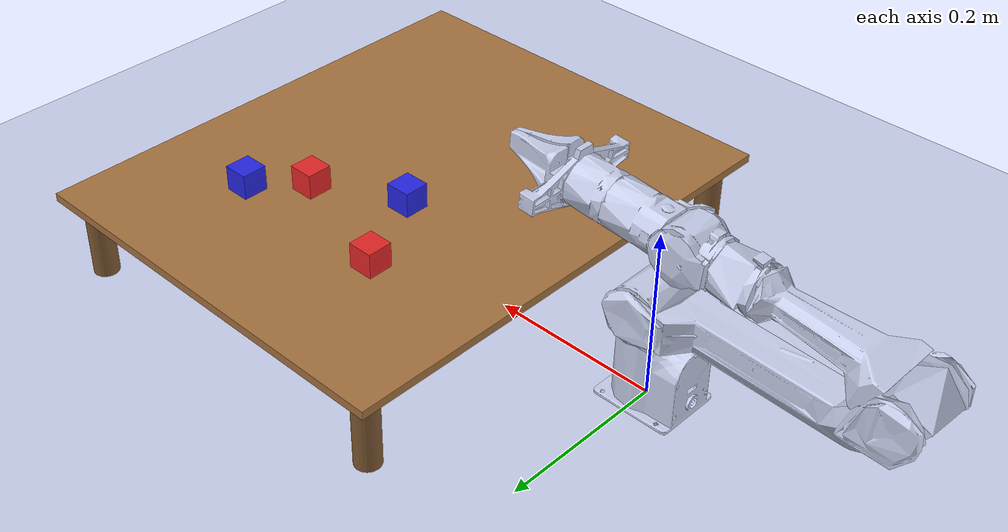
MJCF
<mujoco model="piper_sorting">
  <compiler angle="radian" meshdir="../meshes/" eulerseq="XYZ" />

  <option gravity="0 0 -9.81" timestep="0.002" />

  <default>
    <joint damping="10" armature="0.1" />
    <geom rgba="0.79 0.82 0.93 1" />
    <position kp="200" kv="20" />
  </default>

  <asset>
    <mesh name="base_link" file="base_link.STL" />
    <mesh name="link1" file="link1.STL" />
    <mesh name="link2" file="link2.STL" />
    <mesh name="link3" file="link3.STL" />
    <mesh name="link4" file="link4.STL" />
    <mesh name="link5" file="link5.STL" />
    <mesh name="link6" file="link6.STL" />
    <mesh name="gripper_base" file="gripper_base.STL" />
    <mesh name="link7" file="link7.STL" />
    <mesh name="link8" file="link8.STL" />
    <texture type="2d" name="groundplane" builtin="checker" rgb1="0.35 0.35 0.35" rgb2="0.25 0.25 0.25" width="512" height="512" />
    <material name="groundplane" texture="groundplane" texrepeat="5 5" />
    <texture type="2d" name="wood" builtin="flat" rgb1="0.65 0.45 0.25" width="64" height="64" />
    <material name="wood" texture="wood" />
  </asset>

  <worldbody>
    <light pos="0 0 3" dir="0 0 -1" diffuse="0.8 0.8 0.8" specular="0.3 0.3 0.3" directional="true" />
    <light pos="1 1 2" dir="-0.5 -0.5 -1" diffuse="0.4 0.4 0.4" specular="0.1 0.1 0.1" />
    <geom type="plane" size="2 2 0.01" material="groundplane" />

    <!-- Piper arm at origin -->
    <body name="base_link" pos="0 0 0" gravcomp="1">
      <inertial pos="-0.00474 0.0000257 0.04145" mass="1.02"
                diaginertia="0.00267 0.00283 0.000896" />
      <geom type="mesh" mesh="base_link" />

      <body name="link1" pos="0 0 0.123" gravcomp="1">
        <inertial pos="0.000122 0.000105 -0.00439" mass="0.71"
                  diaginertia="0.000489 0.000405 0.00044" />
        <joint name="joint1" type="hinge" axis="0 0 1" range="-2.618 2.168" />
        <geom type="mesh" mesh="link1" />

        <body name="link2" euler="1.5708 -0.1359 -3.1416" gravcomp="1">
          <inertial pos="0.1987 -0.01093 0.00142" mass="1.17"
                    diaginertia="0.0679 0.0677 0.00117" />
          <joint name="joint2" type="hinge" axis="0 0 1" range="0 3.14" />
          <geom type="mesh" mesh="link2" />

          <body name="link3" pos="0.28503 0 0" euler="0 0 -1.7939" gravcomp="1">
            <inertial pos="-0.02027 -0.13391 -0.000459" mass="0.5"
                      diaginertia="0.01362 0.01380 0.00045" />
            <joint name="joint3" type="hinge" axis="0 0 1" range="-2.967 0" />
            <geom type="mesh" mesh="link3" />

            <body name="link4" pos="-0.021984 -0.25075 0" euler="1.5708 0 0" gravcomp="1">
              <inertial pos="-0.0000967 0.000876 -0.00497" mass="0.38"
                        diaginertia="0.000190 0.000185 0.000155" />
              <joint name="joint4" type="hinge" axis="0 0 1" range="-1.745 1.745" />
              <geom type="mesh" mesh="link4" />

              <body name="link5" euler="-1.5708 0 0" gravcomp="1">
                <inertial pos="-0.0000411 -0.05665 -0.00372" mass="0.383"
                          diaginertia="0.00166 0.00164 0.000185" />
                <joint name="joint5" type="hinge" axis="0 0 1" range="-1.22 1.22" />
                <geom type="mesh" mesh="link5" />

                <body name="link6" pos="0.000088259 -0.091 0" euler="1.5708 0 0" gravcomp="1">
                  <inertial pos="-0.0000883 0.00000906 -0.002" mass="0.007"
                            diaginertia="0.00000107 0.000000573 0.000000573" />
                  <joint name="joint6" type="hinge" axis="0 0 1" range="-2.0944 2.0944" />
                  <geom type="mesh" mesh="link6" rgba="0.90 0.92 0.93 1" />

                  <body name="gripper_base" gravcomp="1">
                    <inertial pos="-0.000184 0.0000805 0.03214" mass="0.45"
                              diaginertia="0.000929 0.000714 0.000394" />
                    <geom type="mesh" mesh="gripper_base" />
                    <site name="ee_site" pos="0 0 0.1358" size="0.001" rgba="0 0 0 0" />
                    <camera name="wrist" pos="0 0 0.05" euler="3.1416 0 0" fovy="60" />

                    <body name="link7" pos="0 0 0.1358" euler="1.5708 0 0" gravcomp="1">
                      <inertial pos="0.000651 -0.04919 0.00972" mass="0.025"
                                diaginertia="0.0000747 0.0000737 0.0000747" />
                      <joint name="joint7" type="slide" axis="0 0 1" range="0 0.035" />
                      <geom type="mesh" mesh="link7" friction="2 0.5 0.01" />
                    </body>

                    <body name="link8" pos="0 0 0.1358" euler="1.5708 0 -3.1416" gravcomp="1">
                      <inertial pos="0.000651 -0.04919 0.00972" mass="0.025"
                                diaginertia="0.0000747 0.0000737 0.0000747" />
                      <joint name="joint8" type="slide" axis="0 0 -1" range="-0.035 0" />
                      <geom type="mesh" mesh="link8" friction="2 0.5 0.01" />
                    </body>
                  </body>
                </body>
              </body>
            </body>
          </body>
        </body>
      </body>
    </body>

    <!-- Table -->
    <body name="table" pos="0.35 0 0">
      <geom name="tabletop" type="box" size="0.25 0.3 0.005" pos="0 0 0.1"
            rgba="0.65 0.45 0.25 1" material="wood" />
      <geom name="leg1" type="cylinder" size="0.015 0.05" pos="0.22 0.27 0.05" rgba="0.5 0.35 0.2 1" />
      <geom name="leg2" type="cylinder" size="0.015 0.05" pos="-0.22 0.27 0.05" rgba="0.5 0.35 0.2 1" />
      <geom name="leg3" type="cylinder" size="0.015 0.05" pos="0.22 -0.27 0.05" rgba="0.5 0.35 0.2 1" />
      <geom name="leg4" type="cylinder" size="0.015 0.05" pos="-0.22 -0.27 0.05" rgba="0.5 0.35 0.2 1" />
    </body>

    <!-- Sorting zones (visual only) -->
    <body name="red_zone" pos="0.45 -0.2 0.101">
      <geom name="red_zone_geom" type="cylinder" size="0.04 0.001"
            rgba="0.9 0.2 0.2 0.4" contype="0" conaffinity="0" />
    </body>
    <body name="blue_zone" pos="0.25 -0.2 0.101">
      <geom name="blue_zone_geom" type="cylinder" size="0.04 0.001"
            rgba="0.2 0.2 0.9 0.4" contype="0" conaffinity="0" />
    </body>

    <!-- Red blocks -->
    <body name="red_block_0" pos="0.25 0.15 0.125">
      <freejoint name="red_block_0_joint" />
      <geom name="red_block_0_geom" type="box" size="0.015 0.015 0.015" mass="0.04"
            rgba="0.9 0.15 0.15 1" friction="1.5 0.5 0.01" />
    </body>
    <body name="red_block_1" pos="0.40 0.10 0.125">
      <freejoint name="red_block_1_joint" />
      <geom name="red_block_1_geom" type="box" size="0.015 0.015 0.015" mass="0.04"
            rgba="0.9 0.15 0.15 1" friction="1.5 0.5 0.01" />
    </body>

    <!-- Blue blocks -->
    <body name="blue_block_0" pos="0.30 0.05 0.125">
      <freejoint name="blue_block_0_joint" />
      <geom name="blue_block_0_geom" type="box" size="0.015 0.015 0.015" mass="0.04"
            rgba="0.15 0.15 0.9 1" friction="1.5 0.5 0.01" />
    </body>
    <body name="blue_block_1" pos="0.45 0.15 0.125">
      <freejoint name="blue_block_1_joint" />
      <geom name="blue_block_1_geom" type="box" size="0.015 0.015 0.015" mass="0.04"
            rgba="0.15 0.15 0.9 1" friction="1.5 0.5 0.01" />
    </body>

    <!-- Overhead camera -->
    <camera name="overhead" pos="0.6 0.3 0.55"
            xyaxes="-0.7682 0.6402 0 -0.4835 -0.5802 0.6554" fovy="60" />

  </worldbody>

  <!-- Weld constraints for grasping each block -->
  <equality>
    <weld name="grasp_red_0" body1="gripper_base" body2="red_block_0" active="false"
          relpose="0 0 0.1358 1 0 0 0" solref="0.01 1" />
    <weld name="grasp_red_1" body1="gripper_base" body2="red_block_1" active="false"
          relpose="0 0 0.1358 1 0 0 0" solref="0.01 1" />
    <weld name="grasp_blue_0" body1="gripper_base" body2="blue_block_0" active="false"
          relpose="0 0 0.1358 1 0 0 0" solref="0.01 1" />
    <weld name="grasp_blue_1" body1="gripper_base" body2="blue_block_1" active="false"
          relpose="0 0 0.1358 1 0 0 0" solref="0.01 1" />
  </equality>

  <keyframe>
    <!-- 8 arm joints + 4 blocks * 7 freejoint dofs = 36 qpos -->
    <key name="home"
         qpos="0 1.57 -1.57 0 0 0 0.015 -0.015
               0.25 0.15 0.125 1 0 0 0
               0.40 0.10 0.125 1 0 0 0
               0.30 0.05 0.125 1 0 0 0
               0.45 0.15 0.125 1 0 0 0"
         ctrl="0 1.57 -1.57 0 0 0 0.015 -0.015" />
  </keyframe>

  <actuator>
    <position name="act_joint1" joint="joint1" />
    <position name="act_joint2" joint="joint2" />
    <position name="act_joint3" joint="joint3" />
    <position name="act_joint4" joint="joint4" />
    <position name="act_joint5" joint="joint5" />
    <position name="act_joint6" joint="joint6" />
    <position name="act_joint7" joint="joint7" ctrlrange="0 0.035" kp="400" />
    <position name="act_joint8" joint="joint8" ctrlrange="-0.035 0" kp="400" />
  </actuator>
</mujoco>
